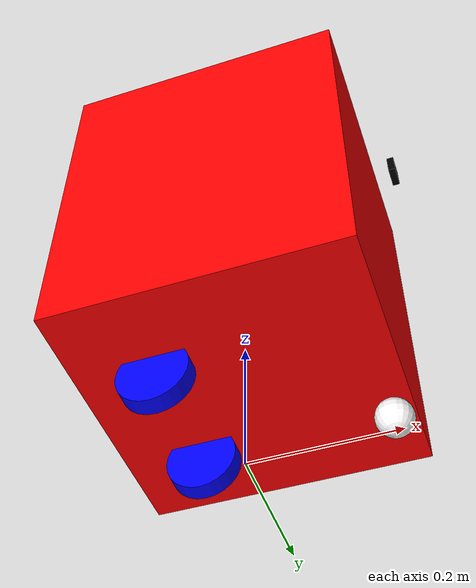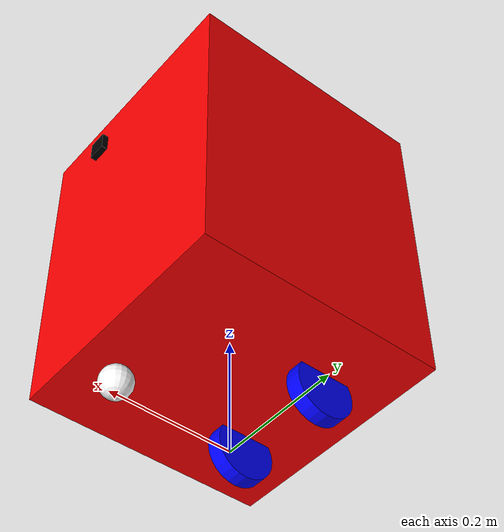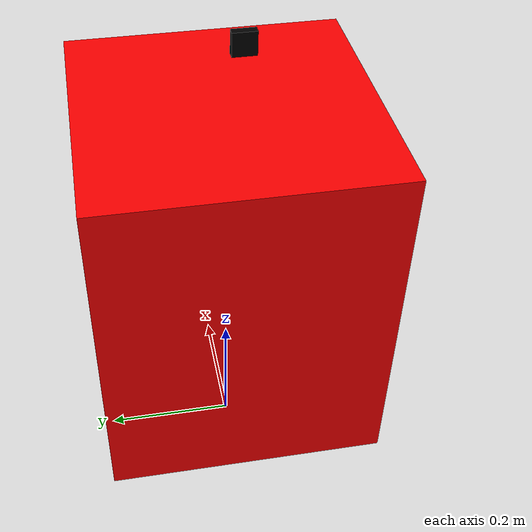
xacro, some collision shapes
<?xml version="1.0"?>

<!--=========================starting xacros================================-->
<robot xmlns:xacro="http://www.ros.org/wiki/xacro" name="prototype">
<xacro:include filename="$(find prototype)/urdf/wheel.xacro"/>
<xacro:include filename="$(find prototype)/urdf/lidar.xacro"/>
<xacro:include filename="$(find prototype)/urdf/joint_macros.xacro"/>
<xacro:include filename="$(find prototype)/urdf/link_macros.xacro"/>
<xacro:include filename="$(find prototype)/urdf/hardware_interface.xacro"/>
<xacro:include filename="$(find prototype)/urdf/camera.xacro"/>

<!--=========================xacro:properties=============================-->
    <xacro:property name="body_length" value="0.41"/>
    <xacro:property name="body_width" value="0.41"/>
    <xacro:property name="body_height" value="0.82"/>

                              <!-- end of xacros-->

  <!--=====================Base-Footprint and base_link link=================-->
  <!-- BASE LINK-->
  <link name="base_link"></link>

  <joint name="base_joint" type="fixed">
    <parent link="base_link"/>
    <child link="base_footprint"/>
    <origin xyz="0.0 0.0 0.0" rpy="0 0 0"/>
  </joint>

<link name="base_footprint">
</link>

 <joint name="chassis_joint" type="fixed">
    <parent link="base_link"/>
    <child link="chassis"/>
    <origin xyz="0.0 0.0 0.12" rpy="0 0 0"/>
  </joint>

<link name="chassis">

    <visual>
        <origin xyz="0.0 0.0 0.2575" rpy="0.0 0.0 0.0"/>
        <geometry>
            <box size="0.4112 0.4112 0.515"/>
        </geometry>
        <material name="silver">
            <color rgba="1 0 0 1.0"/> <!-- red color with RGBA values -->
        </material>
    </visual>
</link>

 <joint name="caster_wheel_joint" type="fixed">
  <parent link="chassis"/>
  <child link="caster_wheel"/>
  <axis xyz="0 0 0"/>
  <origin xyz="0.19 0.0 -0.10" rpy="0 0 0"/>
 </joint>

 <link name="caster_wheel">
            <visual>
                <origin xyz="0.0 0.0 0.0" rpy="0.0 0.0 0.0"/>
                <geometry>
                 <sphere radius="0.025"/>
                </geometry>
                <material name="white">
                    <color rgba="1.0 1.0 1.0 1.0"/>
                </material>
            </visual>
 </link>

 <joint name="imu_joint" type="fixed">
  <parent link="chassis"/>
  <child link="imu_link"/>
  <axis xyz="0.0 0.0 1.0"/>
  <origin xyz="0.0 0.0 1.00" rpy="0.0 0.0 0.0"/>
 </joint>

 <link name="imu_link"></link>

</robot>

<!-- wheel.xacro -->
<!--=========================starting xacros================================-->
<robot xmlns:xacro="http://www.ros.org/wiki/xacro" name="prototype">
<xacro:include filename="$(find prototype)/urdf/joint_macros.xacro"/>

<!--==========================xacro for wheel=============================-->
    <xacro:macro name="wheel" params="wheel_name">
        <link name="${wheel_name}">
            <visual>
                <origin xyz="0.0 0.0 0.0" rpy="1.57 0.0 0.0"/>
                <geometry>
                 <cylinder radius="${wheel_radius}" length="${wheel_length}"/>
                </geometry>
                <material name="blue">
                    <color rgba="0.0 0.0 1.0 1.0"/>
                </material>
               /
            </visual>
            <collision>
                <origin xyz="0.0 0.0 0.0" rpy="0.0 1.5707 0.0"/>
                <geometry>
                    <cylinder radius="${wheel_radius}" length="${wheel_length}"/>
                </geometry>
            </collision>
            <inertial>
                <origin rpy="0 0 0" xyz="0 0 0"/>
                <mass value="0.034"/>
              <inertia ixx="1.37e-5" ixy="0" ixz="0" iyy="1.37e-5" iyz="0" izz="3.41e-6"/>
              </inertial>
              <dynamics damping="0.5" friction="0.1"/>

        </link>
   </xacro:macro>

   <!-- *********************wheel links and joints***************************************-->

<xacro:joint_wheel name="back_right_wheel_joint" origin="-0.0900 -0.088 -0.025"
parent="chassis" child="back_right_wheel"/>

<xacro:wheel  wheel_name="back_right_wheel"/>

<xacro:joint_wheel name="back_left_wheel_joint" origin="-0.0900 0.088 -0.025"
parent="chassis" child="back_left_wheel"/>

<xacro:wheel  wheel_name="back_left_wheel"/>

</robot>

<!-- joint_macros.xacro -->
<robot xmlns:xacro="http://www.ros.org/wiki/xacro" name="prototype">

    <xacro:property name="wheel_radius" value="0.05"/>
    <xacro:property name="wheel_length" value="0.026"/>

   <!--===============xacro for continuous joints=========================-->
    <xacro:macro name="joint_wheel" params="name origin parent child">
        <joint name="${name}" type="continuous">
            <origin xyz="${origin}" rpy="0.0 0.0 0.0"/>
            <parent link="${parent}"/>
            <child link="${child}"/>
            <axis xyz="0.0 1.0 0.0"/>
            <limit effort="200" velocity="2.0"/>
            <joint_properties damping="1.1" friction="1.0"/>
        </joint>
    </xacro:macro>

  <!--===================== xacro for fixed joints===========================-->
  <xacro:macro name="fixed_joint" params="name origin parent child">
    <joint name="${name}" type="fixed">
        <origin xyz="${origin}" rpy="0.0 0.0 0.0"/>
        <parent link="${parent}"/>
        <child link="${child}"/>
    </joint>
  </xacro:macro>

</robot>

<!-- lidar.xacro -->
<!--=========================starting xacros================================-->
<robot xmlns:xacro="http://www.ros.org/wiki/xacro" name="prototype">

<link name="base_laser">
    <visual>
        <origin xyz="0 0 0" rpy="0.0 0.0 0.0"/>
        <geometry>
           <mesh filename="package://prototype/meshes/sensors/rplidar.dae" scale="1.0 1.0 1.0"/>
        </geometry>
       </visual>
       <collision>
           <origin rpy="0 0 0" xyz="0 0 0"/>
          <geometry>
               <cylinder radius="0.0408" length="0.037493"/>
          </geometry>
        </collision>
        <inertial>
           <mass value="0.01"/>
           <origin rpy="0 0 0" xyz="0 0 0.0204"/>
           <inertia ixx="6.066578520833334e-06" ixy="0" ixz="0" iyy="6.072950163333333e-06" iyz="0" izz="9.365128684166666e-06"/>
         </inertial>
</link>

<joint name="base_laser_joint" type="fixed">
    <origin xyz="0.0 0.0 0.248" rpy="0.0 0.0 0.0"/>
    <parent link="base_link"/>
    <child link="base_laser"/>
    <axis xyz="0 0 1"/>
    <limit lower="-0.1" upper="0.0" effort="20.0" velocity="2.0"/>
    <dynamics damping="0.1"  friction="0.01"/>
</joint>

</robot>

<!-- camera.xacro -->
<!--=========================starting xacros================================-->
<robot xmlns:xacro="http://www.ros.org/wiki/xacro" name="prototype">

<link name="camera_link">
    <visual>
        <origin xyz="0 0 0.0" rpy="0.0 0.0 0.0"/>
        <geometry>
        <box size="0.010 0.03 0.03"/>
        </geometry>
        <material name="black">
          <color rgba="0.0 0.0 0.0 1.0"/>
        </material>
       </visual>
</link>

<joint name="camera_joint" type="fixed">
    <origin xyz="0.245 -0.020 0.37" rpy="0.0 0.0 0.0"/>
    <parent link="chassis"/>
    <child link="camera_link"/>
</joint>

<joint name="camera_optical_joint" type="fixed">
    <origin xyz="0.0 0.0 0.0" rpy="-1.57 0.0 -1.57"/>
    <parent link="camera_link"/>
    <child link="camera_link_optical"/>
</joint>
<link name="camera_link_optical">
</link>

<joint name="webcam_joint" type="fixed">
    <origin xyz="-0.12 0.0 0.67" rpy="0.0 0.0 0.0"/>
    <parent link="chassis"/>
    <child link="webcam_link"/>
</joint>

<link name="webcam_link">
    <visual>
        <origin xyz="0 0 0.0" rpy="0.0 0.0 0.0"/>
        <geometry>
        <box size="0.010 0.03 0.03"/>
        </geometry>
        <material name="black">
          <color rgba="0.0 0.0 0.0 1.0"/>
        </material>
       </visual>
</link>

</robot>
